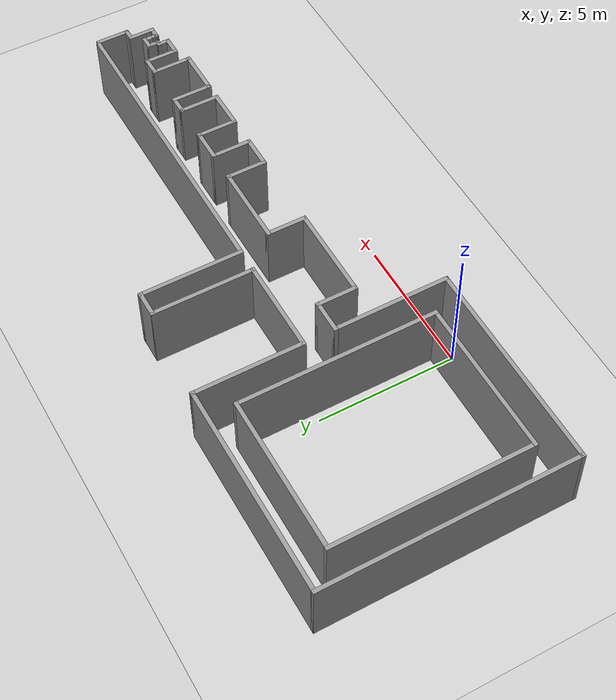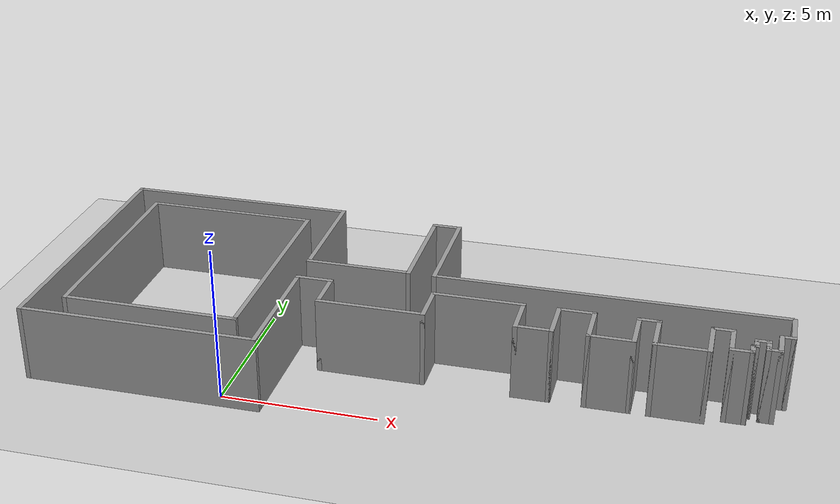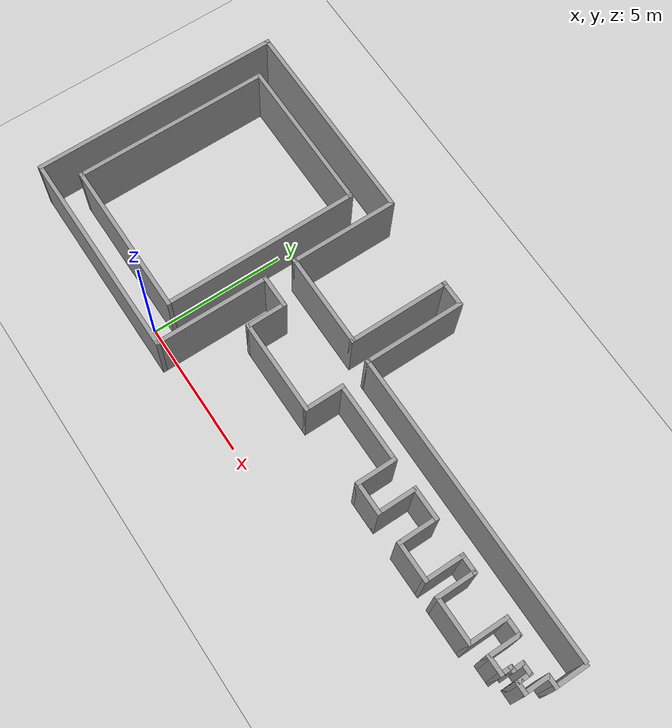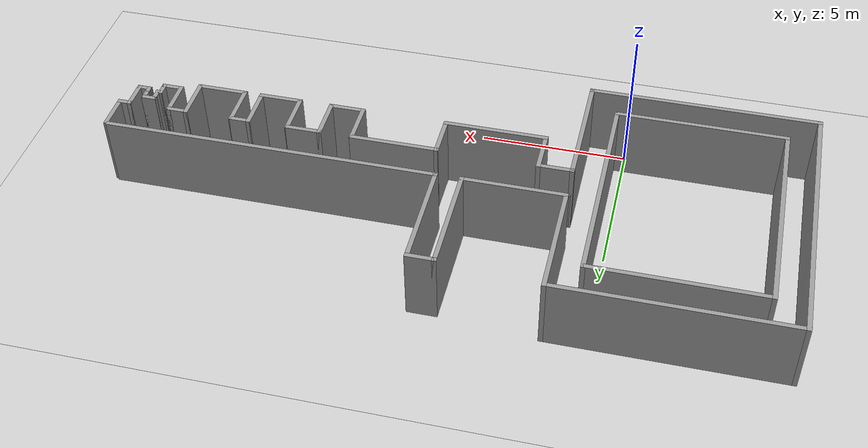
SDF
<sdf version="1.7">
 <world name="default">
  <light name="sun" type="directional">
   <pose>0 0 10 0 -0 0</pose>
   <diffuse>0.8 0.8 0.8 1</diffuse>
   <specular>0.2 0.2 0.2 1</specular>
   <attenuation>
    <range>1000</range>
    <constant>0.9</constant>
    <linear>0.01</linear>
    <quadratic>0.001</quadratic>
   </attenuation>
   <direction>-0.5 0.1 -0.9</direction>
   <spot><inner_angle>0</inner_angle><outer_angle>0</outer_angle><falloff>0</falloff></spot>
  </light>
  <model name="ground_plane">
   <static>1</static>
   <link name="link">
    <collision name="collision">
     <geometry><plane><normal>0 0 1</normal><size>100 100</size></plane></geometry>
     <surface>
      <contact><collide_bitmask>65535</collide_bitmask></contact>
      <friction><ode><mu>100</mu><mu2>50</mu2></ode></friction>
     </surface>
    </collision>
    <visual name="visual">
     <cast_shadows>0</cast_shadows>
     <geometry><plane><normal>0 0 1</normal><size>100 100</size></plane></geometry>
     <material>
      <script><uri>file://media/materials/scripts/gazebo.material</uri><name>Gazebo/Grey</name></script>
     </material>
    </visual>
   </link>
  </model>
  <gravity>0 0 -9.8</gravity>
  <magnetic_field>6e-06 2.3e-05 -4.2e-05</magnetic_field>
  <atmosphere type="adiabatic"/>
  <physics type="ode">
   <real_time_update_rate>1000.0</real_time_update_rate>
   <max_step_size>0.003</max_step_size>
   <real_time_factor>1</real_time_factor>
  </physics>
  <scene><ambient>0.4 0.4 0.4 1</ambient><background>0.7 0.7 0.7 1</background><shadows>1</shadows></scene>
  <spherical_coordinates>
   <surface_model>EARTH_WGS84</surface_model>
   <latitude_deg>0</latitude_deg>
   <longitude_deg>0</longitude_deg>
   <elevation>0</elevation>
   <heading_deg>0</heading_deg>
  </spherical_coordinates>
  <model name="key">
   <pose>5.26166 4.11046 0 0 -0 0</pose>
   <link name="Wall_0">
    <collision name="Wall_0_Collision">
     <geometry><box><size>5.75 0.15 2.5</size></box></geometry>
     <pose>0 0 1.25 0 -0 0</pose>
    </collision>
    <visual name="Wall_0_Visual">
     <pose>0 0 1.25 0 -0 0</pose>
     <geometry><box><size>5.75 0.15 2.5</size></box></geometry>
     <material>
      <script><uri>file://media/materials/scripts/gazebo.material</uri><name>Gazebo/Grey</name></script>
      <ambient>1 1 1 1</ambient>
     </material>
     <meta><layer>0</layer></meta>
    </visual>
    <pose>-7.69068 -3.53974 0 0 -0 3.14159</pose>
   </link>
   <link name="Wall_1">
    <collision name="Wall_1_Collision">
     <geometry><box><size>7.25 0.15 2.5</size></box></geometry>
     <pose>0 0 1.25 0 -0 0</pose>
    </collision>
    <visual name="Wall_1_Visual">
     <pose>0 0 1.25 0 -0 0</pose>
     <geometry><box><size>7.25 0.15 2.5</size></box></geometry>
     <material>
      <script><uri>file://media/materials/scripts/gazebo.material</uri><name>Gazebo/Grey</name></script>
      <ambient>1 1 1 1</ambient>
     </material>
     <meta><layer>0</layer></meta>
    </visual>
    <pose>-10.4907 0.010264 0 0 -0 1.5708</pose>
   </link>
   <link name="Wall_10">
    <collision name="Wall_10_Collision">
     <geometry><box><size>4 0.15 2.5</size></box></geometry>
     <pose>0 0 1.25 0 -0 0</pose>
    </collision>
    <visual name="Wall_10_Visual">
     <pose>0 0 1.25 0 -0 0</pose>
     <geometry><box><size>4 0.15 2.5</size></box></geometry>
     <material>
      <script><uri>file://media/materials/scripts/gazebo.material</uri><name>Gazebo/Grey</name></script>
      <ambient>1 1 1 1</ambient>
     </material>
     <meta><layer>0</layer></meta>
    </visual>
    <pose>-3.9 2.625 0 0 -0 -1.5708</pose>
   </link>
   <link name="Wall_11">
    <collision name="Wall_11_Collision">
     <geometry><box><size>3.5 0.15 2.5</size></box></geometry>
     <pose>0 0 1.25 0 -0 0</pose>
    </collision>
    <visual name="Wall_11_Visual">
     <pose>0 0 1.25 0 -0 0</pose>
     <geometry><box><size>3.5 0.15 2.5</size></box></geometry>
     <material>
      <script><uri>file://media/materials/scripts/gazebo.material</uri><name>Gazebo/Grey</name></script>
      <ambient>1 1 1 1</ambient>
     </material>
     <meta><layer>0</layer></meta>
    </visual>
    <pose>-2.225 0.7 0 0 -0 0</pose>
   </link>
   <link name="Wall_12">
    <collision name="Wall_12_Collision">
     <geometry><box><size>3.75 0.15 2.5</size></box></geometry>
     <pose>0 0 1.25 0 -0 0</pose>
    </collision>
    <visual name="Wall_12_Visual">
     <pose>0 0 1.25 0 -0 0</pose>
     <geometry><box><size>3.75 0.15 2.5</size></box></geometry>
     <material>
      <script><uri>file://media/materials/scripts/gazebo.material</uri><name>Gazebo/Grey</name></script>
      <ambient>1 1 1 1</ambient>
     </material>
     <meta><layer>0</layer></meta>
    </visual>
    <pose>-0.55 2.5 0 0 -0 1.5708</pose>
   </link>
   <link name="Wall_15">
    <collision name="Wall_15_Collision">
     <geometry><box><size>1 0.15 2.5</size></box></geometry>
     <pose>0 0 1.25 0 -0 0</pose>
    </collision>
    <visual name="Wall_15_Visual">
     <pose>0 0 1.25 0 -0 0</pose>
     <geometry><box><size>1 0.15 2.5</size></box></geometry>
     <material>
      <script><uri>file://media/materials/scripts/gazebo.material</uri><name>Gazebo/Grey</name></script>
      <ambient>1 1 1 1</ambient>
     </material>
     <meta><layer>0</layer></meta>
    </visual>
    <pose>-0.125 4.3 0 0 -0 0</pose>
   </link>
   <link name="Wall_16">
    <collision name="Wall_16_Collision">
     <geometry><box><size>3.75 0.15 2.5</size></box></geometry>
     <pose>0 0 1.25 0 -0 0</pose>
    </collision>
    <visual name="Wall_16_Visual">
     <pose>0 0 1.25 0 -0 0</pose>
     <geometry><box><size>3.75 0.15 2.5</size></box></geometry>
     <material>
      <script><uri>file://media/materials/scripts/gazebo.material</uri><name>Gazebo/Grey</name></script>
      <ambient>1 1 1 1</ambient>
     </material>
     <meta><layer>0</layer></meta>
    </visual>
    <pose>0.3 2.5 0 0 -0 -1.5708</pose>
   </link>
   <link name="Wall_17">
    <collision name="Wall_17_Collision">
     <geometry><box><size>11.25 0.15 2.5</size></box></geometry>
     <pose>0 0 1.25 0 -0 0</pose>
    </collision>
    <visual name="Wall_17_Visual">
     <pose>0 0 1.25 0 -0 0</pose>
     <geometry><box><size>11.25 0.15 2.5</size></box></geometry>
     <material>
      <script><uri>file://media/materials/scripts/gazebo.material</uri><name>Gazebo/Grey</name></script>
      <ambient>1 1 1 1</ambient>
     </material>
     <meta><layer>0</layer></meta>
    </visual>
    <pose>5.85 0.7 0 0 -0 0</pose>
   </link>
   <link name="Wall_19">
    <collision name="Wall_19_Collision">
     <geometry><box><size>1.25 0.15 2.5</size></box></geometry>
     <pose>0 0 1.25 0 -0 0</pose>
    </collision>
    <visual name="Wall_19_Visual">
     <pose>0 0 1.25 0 -0 0</pose>
     <geometry><box><size>1.25 0.15 2.5</size></box></geometry>
     <material>
      <script><uri>file://media/materials/scripts/gazebo.material</uri><name>Gazebo/Grey</name></script>
      <ambient>1 1 1 1</ambient>
     </material>
     <meta><layer>0</layer></meta>
    </visual>
    <pose>-3.35 -0.45 0 0 -0 0</pose>
   </link>
   <link name="Wall_2">
    <collision name="Wall_2_Collision">
     <geometry><box><size>5.75 0.15 2.5</size></box></geometry>
     <pose>0 0 1.25 0 -0 0</pose>
    </collision>
    <visual name="Wall_2_Visual">
     <pose>0 0 1.25 0 -0 0</pose>
     <geometry><box><size>5.75 0.15 2.5</size></box></geometry>
     <material>
      <script><uri>file://media/materials/scripts/gazebo.material</uri><name>Gazebo/Grey</name></script>
      <ambient>1 1 1 1</ambient>
     </material>
     <meta><layer>0</layer></meta>
    </visual>
    <pose>-7.69068 3.56026 0 0 -0 0</pose>
   </link>
   <link name="Wall_22">
    <collision name="Wall_22_Collision">
     <geometry><box><size>1.5 0.15 2.5</size></box></geometry>
     <pose>0 0 1.25 0 -0 0</pose>
    </collision>
    <visual name="Wall_22_Visual">
     <pose>0 0 1.25 0 -0 0</pose>
     <geometry><box><size>1.5 0.15 2.5</size></box></geometry>
     <material>
      <script><uri>file://media/materials/scripts/gazebo.material</uri><name>Gazebo/Grey</name></script>
      <ambient>1 1 1 1</ambient>
     </material>
     <meta><layer>0</layer></meta>
    </visual>
    <pose>-2.8 -1.125 0 0 -0 -1.5708</pose>
   </link>
   <link name="Wall_23">
    <collision name="Wall_23_Collision">
     <geometry><box><size>3.5 0.15 2.5</size></box></geometry>
     <pose>0 0 1.25 0 -0 0</pose>
    </collision>
    <visual name="Wall_23_Visual">
     <pose>0 0 1.25 0 -0 0</pose>
     <geometry><box><size>3.5 0.15 2.5</size></box></geometry>
     <material>
      <script><uri>file://media/materials/scripts/gazebo.material</uri><name>Gazebo/Grey</name></script>
      <ambient>1 1 1 1</ambient>
     </material>
     <meta><layer>0</layer></meta>
    </visual>
    <pose>-1.125 -1.8 0 0 -0 0</pose>
   </link>
   <link name="Wall_24">
    <collision name="Wall_24_Collision">
     <geometry><box><size>1.5 0.15 2.5</size></box></geometry>
     <pose>0 0 1.25 0 -0 0</pose>
    </collision>
    <visual name="Wall_24_Visual">
     <pose>0 0 1.25 0 -0 0</pose>
     <geometry><box><size>1.5 0.15 2.5</size></box></geometry>
     <material>
      <script><uri>file://media/materials/scripts/gazebo.material</uri><name>Gazebo/Grey</name></script>
      <ambient>1 1 1 1</ambient>
     </material>
     <meta><layer>0</layer></meta>
    </visual>
    <pose>0.55 -1.125 0 0 -0 1.5708</pose>
   </link>
   <link name="Wall_25">
    <collision name="Wall_25_Collision">
     <geometry><box><size>3 0.15 2.5</size></box></geometry>
     <pose>0 0 1.25 0 -0 0</pose>
    </collision>
    <visual name="Wall_25_Visual">
     <pose>0 0 1.25 0 -0 0</pose>
     <geometry><box><size>3 0.15 2.5</size></box></geometry>
     <material>
      <script><uri>file://media/materials/scripts/gazebo.material</uri><name>Gazebo/Grey</name></script>
      <ambient>1 1 1 1</ambient>
     </material>
     <meta><layer>0</layer></meta>
    </visual>
    <pose>1.975 -0.45 0 0 -0 0</pose>
   </link>
   <link name="Wall_26">
    <collision name="Wall_26_Collision">
     <geometry><box><size>1.5 0.15 2.5</size></box></geometry>
     <pose>0 0 1.25 0 -0 0</pose>
    </collision>
    <visual name="Wall_26_Visual">
     <pose>0 0 1.25 0 -0 0</pose>
     <geometry><box><size>1.5 0.15 2.5</size></box></geometry>
     <material>
      <script><uri>file://media/materials/scripts/gazebo.material</uri><name>Gazebo/Grey</name></script>
      <ambient>1 1 1 1</ambient>
     </material>
     <meta><layer>0</layer></meta>
    </visual>
    <pose>3.4 -1.125 0 0 -0 -1.5708</pose>
   </link>
   <link name="Wall_27">
    <collision name="Wall_27_Collision">
     <geometry><box><size>1.25 0.15 2.5</size></box></geometry>
     <pose>0 0 1.25 0 -0 0</pose>
    </collision>
    <visual name="Wall_27_Visual">
     <pose>0 0 1.25 0 -0 0</pose>
     <geometry><box><size>1.25 0.15 2.5</size></box></geometry>
     <material>
      <script><uri>file://media/materials/scripts/gazebo.material</uri><name>Gazebo/Grey</name></script>
      <ambient>1 1 1 1</ambient>
     </material>
     <meta><layer>0</layer></meta>
    </visual>
    <pose>3.95 -1.8 0 0 -0 0</pose>
   </link>
   <link name="Wall_28">
    <collision name="Wall_28_Collision">
     <geometry><box><size>1.5 0.15 2.5</size></box></geometry>
     <pose>0 0 1.25 0 -0 0</pose>
    </collision>
    <visual name="Wall_28_Visual">
     <pose>0 0 1.25 0 -0 0</pose>
     <geometry><box><size>1.5 0.15 2.5</size></box></geometry>
     <material>
      <script><uri>file://media/materials/scripts/gazebo.material</uri><name>Gazebo/Grey</name></script>
      <ambient>1 1 1 1</ambient>
     </material>
     <meta><layer>0</layer></meta>
    </visual>
    <pose>4.5 -1.125 0 0 -0 1.5708</pose>
   </link>
   <link name="Wall_29">
    <collision name="Wall_29_Collision">
     <geometry><box><size>1.25 0.15 2.5</size></box></geometry>
     <pose>0 0 1.25 0 -0 0</pose>
    </collision>
    <visual name="Wall_29_Visual">
     <pose>0 0 1.25 0 -0 0</pose>
     <geometry><box><size>1.25 0.15 2.5</size></box></geometry>
     <material>
      <script><uri>file://media/materials/scripts/gazebo.material</uri><name>Gazebo/Grey</name></script>
      <ambient>1 1 1 1</ambient>
     </material>
     <meta><layer>0</layer></meta>
    </visual>
    <pose>5.05 -0.45 0 0 -0 0</pose>
   </link>
   <link name="Wall_3">
    <collision name="Wall_3_Collision">
     <geometry><box><size>7.25 0.15 2.5</size></box></geometry>
     <pose>0 0 1.25 0 -0 0</pose>
    </collision>
    <visual name="Wall_3_Visual">
     <pose>0 0 1.25 0 -0 0</pose>
     <geometry><box><size>7.25 0.15 2.5</size></box></geometry>
     <material>
      <script><uri>file://media/materials/scripts/gazebo.material</uri><name>Gazebo/Grey</name></script>
      <ambient>1 1 1 1</ambient>
     </material>
     <meta><layer>0</layer></meta>
    </visual>
    <pose>-4.89068 0.010264 0 0 -0 -1.5708</pose>
   </link>
   <link name="Wall_33">
    <collision name="Wall_33_Collision">
     <geometry><box><size>1.5 0.15 2.5</size></box></geometry>
     <pose>0 0 1.25 0 -0 0</pose>
    </collision>
    <visual name="Wall_33_Visual">
     <pose>0 0 1.25 0 -0 0</pose>
     <geometry><box><size>1.5 0.15 2.5</size></box></geometry>
     <material>
      <script><uri>file://media/materials/scripts/gazebo.material</uri><name>Gazebo/Grey</name></script>
      <ambient>1 1 1 1</ambient>
     </material>
     <meta><layer>0</layer></meta>
    </visual>
    <pose>5.6 -1.125 0 0 -0 -1.5708</pose>
   </link>
   <link name="Wall_34">
    <collision name="Wall_34_Collision">
     <geometry><box><size>1.5 0.15 2.5</size></box></geometry>
     <pose>0 0 1.25 0 -0 0</pose>
    </collision>
    <visual name="Wall_34_Visual">
     <pose>0 0 1.25 0 -0 0</pose>
     <geometry><box><size>1.5 0.15 2.5</size></box></geometry>
     <material>
      <script><uri>file://media/materials/scripts/gazebo.material</uri><name>Gazebo/Grey</name></script>
      <ambient>1 1 1 1</ambient>
     </material>
     <meta><layer>0</layer></meta>
    </visual>
    <pose>6.275 -1.8 0 0 -0 0</pose>
   </link>
   <link name="Wall_35">
    <collision name="Wall_35_Collision">
     <geometry><box><size>1.5 0.15 2.5</size></box></geometry>
     <pose>0 0 1.25 0 -0 0</pose>
    </collision>
    <visual name="Wall_35_Visual">
     <pose>0 0 1.25 0 -0 0</pose>
     <geometry><box><size>1.5 0.15 2.5</size></box></geometry>
     <material>
      <script><uri>file://media/materials/scripts/gazebo.material</uri><name>Gazebo/Grey</name></script>
      <ambient>1 1 1 1</ambient>
     </material>
     <meta><layer>0</layer></meta>
    </visual>
    <pose>6.95 -1.125 0 0 -0 1.5708</pose>
   </link>
   <link name="Wall_36">
    <collision name="Wall_36_Collision">
     <geometry><box><size>0.75 0.15 2.5</size></box></geometry>
     <pose>0 0 1.25 0 -0 0</pose>
    </collision>
    <visual name="Wall_36_Visual">
     <pose>0 0 1.25 0 -0 0</pose>
     <geometry><box><size>0.75 0.15 2.5</size></box></geometry>
     <material>
      <script><uri>file://media/materials/scripts/gazebo.material</uri><name>Gazebo/Grey</name></script>
      <ambient>1 1 1 1</ambient>
     </material>
     <meta><layer>0</layer></meta>
    </visual>
    <pose>7.25 -0.45 0 0 -0 0</pose>
   </link>
   <link name="Wall_37">
    <collision name="Wall_37_Collision">
     <geometry><box><size>1.5 0.15 2.5</size></box></geometry>
     <pose>0 0 1.25 0 -0 0</pose>
    </collision>
    <visual name="Wall_37_Visual">
     <pose>0 0 1.25 0 -0 0</pose>
     <geometry><box><size>1.5 0.15 2.5</size></box></geometry>
     <material>
      <script><uri>file://media/materials/scripts/gazebo.material</uri><name>Gazebo/Grey</name></script>
      <ambient>1 1 1 1</ambient>
     </material>
     <meta><layer>0</layer></meta>
    </visual>
    <pose>7.55 -1.125 0 0 -0 -1.5708</pose>
   </link>
   <link name="Wall_38">
    <collision name="Wall_38_Collision">
     <geometry><box><size>1.75 0.15 2.5</size></box></geometry>
     <pose>0 0 1.25 0 -0 0</pose>
    </collision>
    <visual name="Wall_38_Visual">
     <pose>0 0 1.25 0 -0 0</pose>
     <geometry><box><size>1.75 0.15 2.5</size></box></geometry>
     <material>
      <script><uri>file://media/materials/scripts/gazebo.material</uri><name>Gazebo/Grey</name></script>
      <ambient>1 1 1 1</ambient>
     </material>
     <meta><layer>0</layer></meta>
    </visual>
    <pose>8.35 -1.8 0 0 -0 0</pose>
   </link>
   <link name="Wall_39">
    <collision name="Wall_39_Collision">
     <geometry><box><size>1.5 0.15 2.5</size></box></geometry>
     <pose>0 0 1.25 0 -0 0</pose>
    </collision>
    <visual name="Wall_39_Visual">
     <pose>0 0 1.25 0 -0 0</pose>
     <geometry><box><size>1.5 0.15 2.5</size></box></geometry>
     <material>
      <script><uri>file://media/materials/scripts/gazebo.material</uri><name>Gazebo/Grey</name></script>
      <ambient>1 1 1 1</ambient>
     </material>
     <meta><layer>0</layer></meta>
    </visual>
    <pose>9.15 -1.125 0 0 -0 1.5708</pose>
   </link>
   <link name="Wall_40">
    <collision name="Wall_40_Collision">
     <geometry><box><size>0.75 0.15 2.5</size></box></geometry>
     <pose>0 0 1.25 0 -0 0</pose>
    </collision>
    <visual name="Wall_40_Visual">
     <pose>0 0 1.25 0 -0 0</pose>
     <geometry><box><size>0.75 0.15 2.5</size></box></geometry>
     <material>
      <script><uri>file://media/materials/scripts/gazebo.material</uri><name>Gazebo/Grey</name></script>
      <ambient>1 1 1 1</ambient>
     </material>
     <meta><layer>0</layer></meta>
    </visual>
    <pose>9.45 -0.45 0 0 -0 0</pose>
   </link>
   <link name="Wall_41">
    <collision name="Wall_41_Collision">
     <geometry><box><size>1.25 0.15 2.5</size></box></geometry>
     <pose>0 0 1.25 0 -0 0</pose>
    </collision>
    <visual name="Wall_41_Visual">
     <pose>0 0 1.25 0 -0 0</pose>
     <geometry><box><size>1.25 0.15 2.5</size></box></geometry>
     <material>
      <script><uri>file://media/materials/scripts/gazebo.material</uri><name>Gazebo/Grey</name></script>
      <ambient>1 1 1 1</ambient>
     </material>
     <meta><layer>0</layer></meta>
    </visual>
    <pose>9.75 -1 0 0 -0 -1.5708</pose>
   </link>
   <link name="Wall_42">
    <collision name="Wall_42_Collision">
     <geometry><box><size>0.75 0.15 2.5</size></box></geometry>
     <pose>0 0 1.25 0 -0 0</pose>
    </collision>
    <visual name="Wall_42_Visual">
     <pose>0 0 1.25 0 -0 0</pose>
     <geometry><box><size>0.75 0.15 2.5</size></box></geometry>
     <material>
      <script><uri>file://media/materials/scripts/gazebo.material</uri><name>Gazebo/Grey</name></script>
      <ambient>1 1 1 1</ambient>
     </material>
     <meta><layer>0</layer></meta>
    </visual>
    <pose>10.05 -1.55 0 0 -0 0</pose>
   </link>
   <link name="Wall_43">
    <collision name="Wall_43_Collision">
     <geometry><box><size>0.5 0.15 2.5</size></box></geometry>
     <pose>0 0 1.25 0 -0 0</pose>
    </collision>
    <visual name="Wall_43_Visual">
     <pose>0 0 1.25 0 -0 0</pose>
     <geometry><box><size>0.5 0.15 2.5</size></box></geometry>
     <material>
      <script><uri>file://media/materials/scripts/gazebo.material</uri><name>Gazebo/Grey</name></script>
      <ambient>1 1 1 1</ambient>
     </material>
     <meta><layer>0</layer></meta>
    </visual>
    <pose>10.35 -1.375 0 0 -0 1.5708</pose>
   </link>
   <link name="Wall_44">
    <collision name="Wall_44_Collision">
     <geometry><box><size>0.25 0.15 2.5</size></box></geometry>
     <pose>0 0 1.25 0 -0 0</pose>
    </collision>
    <visual name="Wall_44_Visual">
     <pose>0 0 1.25 0 -0 0</pose>
     <geometry><box><size>0.25 0.15 2.5</size></box></geometry>
     <material>
      <script><uri>file://media/materials/scripts/gazebo.material</uri><name>Gazebo/Grey</name></script>
      <ambient>1 1 1 1</ambient>
     </material>
     <meta><layer>0</layer></meta>
    </visual>
    <pose>10.4 -1.2 0 0 -0 0</pose>
   </link>
   <link name="Wall_45">
    <collision name="Wall_45_Collision">
     <geometry><box><size>0.5 0.15 2.5</size></box></geometry>
     <pose>0 0 1.25 0 -0 0</pose>
    </collision>
    <visual name="Wall_45_Visual">
     <pose>0 0 1.25 0 -0 0</pose>
     <geometry><box><size>0.5 0.15 2.5</size></box></geometry>
     <material>
      <script><uri>file://media/materials/scripts/gazebo.material</uri><name>Gazebo/Grey</name></script>
      <ambient>1 1 1 1</ambient>
     </material>
     <meta><layer>0</layer></meta>
    </visual>
    <pose>10.45 -1.025 0 0 -0 1.5708</pose>
   </link>
   <link name="Wall_46">
    <collision name="Wall_46_Collision">
     <geometry><box><size>0.5 0.15 2.5</size></box></geometry>
     <pose>0 0 1.25 0 -0 0</pose>
    </collision>
    <visual name="Wall_46_Visual">
     <pose>0 0 1.25 0 -0 0</pose>
     <geometry><box><size>0.5 0.15 2.5</size></box></geometry>
     <material>
      <script><uri>file://media/materials/scripts/gazebo.material</uri><name>Gazebo/Grey</name></script>
      <ambient>1 1 1 1</ambient>
     </material>
     <meta><layer>0</layer></meta>
    </visual>
    <pose>10.625 -0.85 0 0 -0 0</pose>
   </link>
   <link name="Wall_47">
    <collision name="Wall_47_Collision">
     <geometry><box><size>0.5 0.15 2.5</size></box></geometry>
     <pose>0 0 1.25 0 -0 0</pose>
    </collision>
    <visual name="Wall_47_Visual">
     <pose>0 0 1.25 0 -0 0</pose>
     <geometry><box><size>0.5 0.15 2.5</size></box></geometry>
     <material>
      <script><uri>file://media/materials/scripts/gazebo.material</uri><name>Gazebo/Grey</name></script>
      <ambient>1 1 1 1</ambient>
     </material>
     <meta><layer>0</layer></meta>
    </visual>
    <pose>10.8 -1.025 0 0 -0 -1.5708</pose>
   </link>
   <link name="Wall_48">
    <collision name="Wall_48_Collision">
     <geometry><box><size>0.25 0.15 2.5</size></box></geometry>
     <pose>0 0 1.25 0 -0 0</pose>
    </collision>
    <visual name="Wall_48_Visual">
     <pose>0 0 1.25 0 -0 0</pose>
     <geometry><box><size>0.25 0.15 2.5</size></box></geometry>
     <material>
      <script><uri>file://media/materials/scripts/gazebo.material</uri><name>Gazebo/Grey</name></script>
      <ambient>1 1 1 1</ambient>
     </material>
     <meta><layer>0</layer></meta>
    </visual>
    <pose>10.8 -1.25 0 0 -0 -1.5708</pose>
   </link>
   <link name="Wall_54">
    <collision name="Wall_54_Collision">
     <geometry><box><size>0.5 0.15 2.5</size></box></geometry>
     <pose>0 0 1.25 0 -0 0</pose>
    </collision>
    <visual name="Wall_54_Visual">
     <pose>0 0 1.25 0 -0 0</pose>
     <geometry><box><size>0.5 0.15 2.5</size></box></geometry>
     <material>
      <script><uri>file://media/materials/scripts/gazebo.material</uri><name>Gazebo/Grey</name></script>
      <ambient>1 1 1 1</ambient>
     </material>
     <meta><layer>0</layer></meta>
    </visual>
    <pose>10.975 -1.3 0 0 -0 0</pose>
   </link>
   <link name="Wall_55">
    <collision name="Wall_55_Collision">
     <geometry><box><size>1 0.15 2.5</size></box></geometry>
     <pose>0 0 1.25 0 -0 0</pose>
    </collision>
    <visual name="Wall_55_Visual">
     <pose>0 0 1.25 0 -0 0</pose>
     <geometry><box><size>1 0.15 2.5</size></box></geometry>
     <material>
      <script><uri>file://media/materials/scripts/gazebo.material</uri><name>Gazebo/Grey</name></script>
      <ambient>1 1 1 1</ambient>
     </material>
     <meta><layer>0</layer></meta>
    </visual>
    <pose>11.15 -0.875 0 0 -0 1.5708</pose>
   </link>
   <link name="Wall_56">
    <collision name="Wall_56_Collision">
     <geometry><box><size>0.5 0.15 2.5</size></box></geometry>
     <pose>0 0 1.25 0 -0 0</pose>
    </collision>
    <visual name="Wall_56_Visual">
     <pose>0 0 1.25 0 -0 0</pose>
     <geometry><box><size>0.5 0.15 2.5</size></box></geometry>
     <material>
      <script><uri>file://media/materials/scripts/gazebo.material</uri><name>Gazebo/Grey</name></script>
      <ambient>1 1 1 1</ambient>
     </material>
     <meta><layer>0</layer></meta>
    </visual>
    <pose>11.325 -0.45 0 0 -0 0</pose>
   </link>
   <link name="Wall_57">
    <collision name="Wall_57_Collision">
     <geometry><box><size>1.25 0.15 2.5</size></box></geometry>
     <pose>0 0 1.25 0 -0 0</pose>
    </collision>
    <visual name="Wall_57_Visual">
     <pose>0 0 1.25 0 -0 0</pose>
     <geometry><box><size>1.25 0.15 2.5</size></box></geometry>
     <material>
      <script><uri>file://media/materials/scripts/gazebo.material</uri><name>Gazebo/Grey</name></script>
      <ambient>1 1 1 1</ambient>
     </material>
     <meta><layer>0</layer></meta>
    </visual>
    <pose>11.5 0.1 0 0 -0 1.5708</pose>
   </link>
   <link name="Wall_6">
    <collision name="Wall_6_Collision">
     <geometry><box><size>4.25 0.15 2.5</size></box></geometry>
     <pose>0 0 1.25 0 -0 0</pose>
    </collision>
    <visual name="Wall_6_Visual">
     <pose>0 0 1.25 0 -0 0</pose>
     <geometry><box><size>4.25 0.15 2.5</size></box></geometry>
     <material>
      <script><uri>file://media/materials/scripts/gazebo.material</uri><name>Gazebo/Grey</name></script>
      <ambient>1 1 1 1</ambient>
     </material>
     <meta><layer>0</layer></meta>
    </visual>
    <pose>-3.9 -2.5 0 0 -0 -1.5708</pose>
   </link>
   <link name="Wall_7">
    <collision name="Wall_7_Collision">
     <geometry><box><size>7.75 0.15 2.5</size></box></geometry>
     <pose>0 0 1.25 0 -0 0</pose>
    </collision>
    <visual name="Wall_7_Visual">
     <pose>0 0 1.25 0 -0 0</pose>
     <geometry><box><size>7.75 0.15 2.5</size></box></geometry>
     <material>
      <script><uri>file://media/materials/scripts/gazebo.material</uri><name>Gazebo/Grey</name></script>
      <ambient>1 1 1 1</ambient>
     </material>
     <meta><layer>0</layer></meta>
    </visual>
    <pose>-7.7 -4.55 0 0 -0 3.14159</pose>
   </link>
   <link name="Wall_8">
    <collision name="Wall_8_Collision">
     <geometry><box><size>9.25 0.15 2.5</size></box></geometry>
     <pose>0 0 1.25 0 -0 0</pose>
    </collision>
    <visual name="Wall_8_Visual">
     <pose>0 0 1.25 0 -0 0</pose>
     <geometry><box><size>9.25 0.15 2.5</size></box></geometry>
     <material>
      <script><uri>file://media/materials/scripts/gazebo.material</uri><name>Gazebo/Grey</name></script>
      <ambient>1 1 1 1</ambient>
     </material>
     <meta><layer>0</layer></meta>
    </visual>
    <pose>-11.5 -0 0 0 -0 1.5708</pose>
   </link>
   <link name="Wall_9">
    <collision name="Wall_9_Collision">
     <geometry><box><size>7.75 0.15 2.5</size></box></geometry>
     <pose>0 0 1.25 0 -0 0</pose>
    </collision>
    <visual name="Wall_9_Visual">
     <pose>0 0 1.25 0 -0 0</pose>
     <geometry><box><size>7.75 0.15 2.5</size></box></geometry>
     <material>
      <script><uri>file://media/materials/scripts/gazebo.material</uri><name>Gazebo/Grey</name></script>
      <ambient>1 1 1 1</ambient>
     </material>
     <meta><layer>0</layer></meta>
    </visual>
    <pose>-7.7 4.55 0 0 -0 0</pose>
   </link>
   <static>1</static>
  </model>
 </world>
</sdf>
